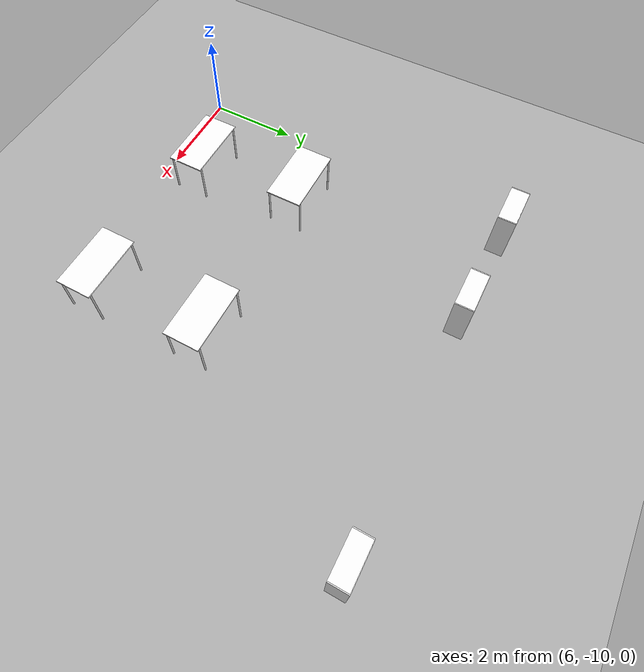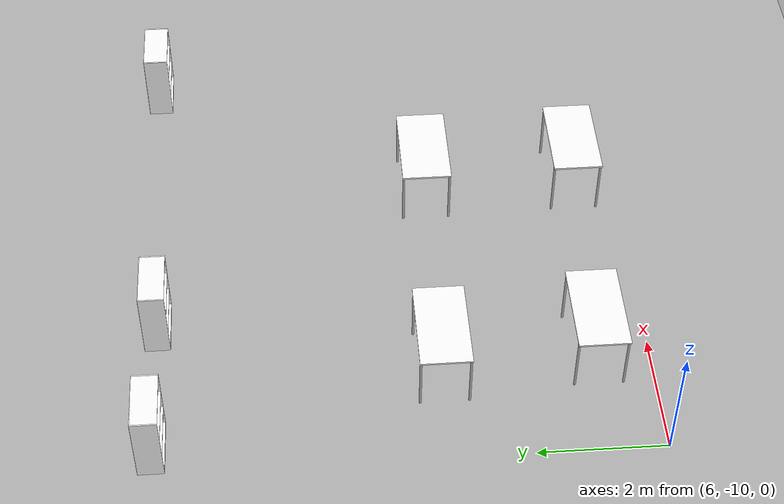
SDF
<sdf version="1.7">
 <world name="cp_world">
  <model name="ground_plane">
   <static>1</static>
   <link name="link">
    <collision name="collision">
     <geometry><plane><normal>0 0 1</normal><size>100 100</size></plane></geometry>
     <surface>
      <contact><collide_bitmask>65535</collide_bitmask></contact>
      <friction><ode><mu>100</mu><mu2>50</mu2></ode></friction>
     </surface>
    </collision>
    <visual name="visual">
     <cast_shadows>0</cast_shadows>
     <geometry><plane><normal>0 0 1</normal><size>100 100</size></plane></geometry>
     <material>
      <ambient>0.7 0.7 0.7 1.0</ambient>
      <diffuse>0.7 0.7 0.7 1.0</diffuse>
      <specular>0.01 0.01 0.01 1.0</specular>
     </material>
    </visual>
   </link>
  </model>
  <model name="bookshelf">
   <static>1</static>
   <link name="link">
    <inertial><mass>1</mass></inertial>
    <collision name="back">
     <pose>0 0.005 0.6 0 -0 0</pose>
     <geometry><box><size>0.9 0.01 1.2</size></box></geometry>
    </collision>
    <visual name="visual1">
     <pose>0 0.005 0.6 0 -0 0</pose>
     <geometry><box><size>0.9 0.01 1.2</size></box></geometry>
     <material>
      <diffuse>1.0 1.0 1.0</diffuse>
      <specular>1.0 1.0 1.0</specular>
      <ambient>1.0 1.0 1.0</ambient>
      <pbr><metal><albedo_map>model://wall/materials/textures/wood.jpg</albedo_map></metal></pbr>
     </material>
    </visual>
    <collision name="left_side">
     <pose>0.45 -0.195 0.6 0 -0 0</pose>
     <geometry><box><size>0.02 0.4 1.2</size></box></geometry>
    </collision>
    <visual name="visual2">
     <pose>0.45 -0.195 0.6 0 -0 0</pose>
     <geometry><box><size>0.02 0.4 1.2</size></box></geometry>
     <material>
      <diffuse>1.0 1.0 1.0</diffuse>
      <specular>1.0 1.0 1.0</specular>
      <ambient>1.0 1.0 1.0</ambient>
      <pbr><metal><albedo_map>model://wall/materials/textures/wood.jpg</albedo_map></metal></pbr>
     </material>
    </visual>
    <collision name="right_side">
     <pose>-0.45 -0.195 0.6 0 -0 0</pose>
     <geometry><box><size>0.02 0.4 1.2</size></box></geometry>
    </collision>
    <visual name="visual3">
     <pose>-0.45 -0.195 0.6 0 -0 0</pose>
     <geometry><box><size>0.02 0.4 1.2</size></box></geometry>
     <material>
      <diffuse>1.0 1.0 1.0</diffuse>
      <specular>1.0 1.0 1.0</specular>
      <ambient>1.0 1.0 1.0</ambient>
      <pbr><metal><albedo_map>model://wall/materials/textures/wood.jpg</albedo_map></metal></pbr>
     </material>
    </visual>
    <collision name="bottom">
     <pose>0 -0.195 0.03 0 -0 0</pose>
     <geometry><box><size>0.88 0.4 0.06</size></box></geometry>
    </collision>
    <visual name="visual4">
     <pose>0 -0.195 0.03 0 -0 0</pose>
     <geometry><box><size>0.88 0.4 0.06</size></box></geometry>
     <material>
      <diffuse>1.0 1.0 1.0</diffuse>
      <specular>1.0 1.0 1.0</specular>
      <ambient>1.0 1.0 1.0</ambient>
      <pbr><metal><albedo_map>model://wall/materials/textures/wood.jpg</albedo_map></metal></pbr>
     </material>
    </visual>
    <collision name="top">
     <pose>0 -0.195 1.19 0 -0 0</pose>
     <geometry><box><size>0.88 0.4 0.02</size></box></geometry>
    </collision>
    <visual name="visual5">
     <pose>0 -0.195 1.19 0 -0 0</pose>
     <geometry><box><size>0.88 0.4 0.02</size></box></geometry>
     <material>
      <diffuse>1.0 1.0 1.0</diffuse>
      <specular>1.0 1.0 1.0</specular>
      <ambient>1.0 1.0 1.0</ambient>
      <pbr><metal><albedo_map>model://wall/materials/textures/wood.jpg</albedo_map></metal></pbr>
     </material>
    </visual>
    <collision name="low_shelf">
     <pose>0 -0.195 0.43 0 -0 0</pose>
     <geometry><box><size>0.88 0.4 0.02</size></box></geometry>
    </collision>
    <visual name="visual6">
     <pose>0 -0.195 0.43 0 -0 0</pose>
     <geometry><box><size>0.88 0.4 0.02</size></box></geometry>
     <material>
      <diffuse>1.0 1.0 1.0</diffuse>
      <specular>1.0 1.0 1.0</specular>
      <ambient>1.0 1.0 1.0</ambient>
      <pbr><metal><albedo_map>model://wall/materials/textures/wood.jpg</albedo_map></metal></pbr>
     </material>
    </visual>
    <collision name="high_shelf">
     <pose>0 -0.195 0.8 0 -0 0</pose>
     <geometry><box><size>0.88 0.4 0.02</size></box></geometry>
    </collision>
    <visual name="visual7">
     <pose>0 -0.195 0.8 0 -0 0</pose>
     <geometry><box><size>0.88 0.4 0.02</size></box></geometry>
     <material>
      <diffuse>1.0 1.0 1.0</diffuse>
      <specular>1.0 1.0 1.0</specular>
      <ambient>1.0 1.0 1.0</ambient>
      <pbr><metal><albedo_map>model://wall/materials/textures/wood.jpg</albedo_map></metal></pbr>
     </material>
    </visual>
   </link>
   <pose>6.47527 -2.08291 0 0 -0 0</pose>
  </model>
  <model name="bookshelf_clone">
   <static>1</static>
   <link name="link">
    <inertial><mass>1</mass></inertial>
    <collision name="back">
     <pose>0 0.005 0.6 0 -0 0</pose>
     <geometry><box><size>0.9 0.01 1.2</size></box></geometry>
    </collision>
    <visual name="visual1">
     <pose>0 0.005 0.6 0 -0 0</pose>
     <geometry><box><size>0.9 0.01 1.2</size></box></geometry>
     <material>
      <diffuse>1.0 1.0 1.0</diffuse>
      <specular>1.0 1.0 1.0</specular>
      <ambient>1.0 1.0 1.0</ambient>
      <pbr><metal><albedo_map>model://wall/materials/textures/wood.jpg</albedo_map></metal></pbr>
     </material>
    </visual>
    <collision name="left_side">
     <pose>0.45 -0.195 0.6 0 -0 0</pose>
     <geometry><box><size>0.02 0.4 1.2</size></box></geometry>
    </collision>
    <visual name="visual2">
     <pose>0.45 -0.195 0.6 0 -0 0</pose>
     <geometry><box><size>0.02 0.4 1.2</size></box></geometry>
     <material>
      <diffuse>1.0 1.0 1.0</diffuse>
      <specular>1.0 1.0 1.0</specular>
      <ambient>1.0 1.0 1.0</ambient>
      <pbr><metal><albedo_map>model://wall/materials/textures/wood.jpg</albedo_map></metal></pbr>
     </material>
    </visual>
    <collision name="right_side">
     <pose>-0.45 -0.195 0.6 0 -0 0</pose>
     <geometry><box><size>0.02 0.4 1.2</size></box></geometry>
    </collision>
    <visual name="visual3">
     <pose>-0.45 -0.195 0.6 0 -0 0</pose>
     <geometry><box><size>0.02 0.4 1.2</size></box></geometry>
     <material>
      <diffuse>1.0 1.0 1.0</diffuse>
      <specular>1.0 1.0 1.0</specular>
      <ambient>1.0 1.0 1.0</ambient>
      <pbr><metal><albedo_map>model://wall/materials/textures/wood.jpg</albedo_map></metal></pbr>
     </material>
    </visual>
    <collision name="bottom">
     <pose>0 -0.195 0.03 0 -0 0</pose>
     <geometry><box><size>0.88 0.4 0.06</size></box></geometry>
    </collision>
    <visual name="visual4">
     <pose>0 -0.195 0.03 0 -0 0</pose>
     <geometry><box><size>0.88 0.4 0.06</size></box></geometry>
     <material>
      <diffuse>1.0 1.0 1.0</diffuse>
      <specular>1.0 1.0 1.0</specular>
      <ambient>1.0 1.0 1.0</ambient>
      <pbr><metal><albedo_map>model://wall/materials/textures/wood.jpg</albedo_map></metal></pbr>
     </material>
    </visual>
    <collision name="top">
     <pose>0 -0.195 1.19 0 -0 0</pose>
     <geometry><box><size>0.88 0.4 0.02</size></box></geometry>
    </collision>
    <visual name="visual5">
     <pose>0 -0.195 1.19 0 -0 0</pose>
     <geometry><box><size>0.88 0.4 0.02</size></box></geometry>
     <material>
      <diffuse>1.0 1.0 1.0</diffuse>
      <specular>1.0 1.0 1.0</specular>
      <ambient>1.0 1.0 1.0</ambient>
      <pbr><metal><albedo_map>model://wall/materials/textures/wood.jpg</albedo_map></metal></pbr>
     </material>
    </visual>
    <collision name="low_shelf">
     <pose>0 -0.195 0.43 0 -0 0</pose>
     <geometry><box><size>0.88 0.4 0.02</size></box></geometry>
    </collision>
    <visual name="visual6">
     <pose>0 -0.195 0.43 0 -0 0</pose>
     <geometry><box><size>0.88 0.4 0.02</size></box></geometry>
     <material>
      <diffuse>1.0 1.0 1.0</diffuse>
      <specular>1.0 1.0 1.0</specular>
      <ambient>1.0 1.0 1.0</ambient>
      <pbr><metal><albedo_map>model://wall/materials/textures/wood.jpg</albedo_map></metal></pbr>
     </material>
    </visual>
    <collision name="high_shelf">
     <pose>0 -0.195 0.8 0 -0 0</pose>
     <geometry><box><size>0.88 0.4 0.02</size></box></geometry>
    </collision>
    <visual name="visual7">
     <pose>0 -0.195 0.8 0 -0 0</pose>
     <geometry><box><size>0.88 0.4 0.02</size></box></geometry>
     <material>
      <diffuse>1.0 1.0 1.0</diffuse>
      <specular>1.0 1.0 1.0</specular>
      <ambient>1.0 1.0 1.0</ambient>
      <pbr><metal><albedo_map>model://wall/materials/textures/wood.jpg</albedo_map></metal></pbr>
     </material>
    </visual>
   </link>
   <pose>8.81766 -2.1308 0 0 -0 0</pose>
  </model>
  <model name="bookshelf_clone_clone">
   <static>1</static>
   <link name="link">
    <inertial><mass>1</mass></inertial>
    <collision name="back">
     <pose>0 0.005 0.6 0 -0 0</pose>
     <geometry><box><size>0.9 0.01 1.2</size></box></geometry>
    </collision>
    <visual name="visual1">
     <pose>0 0.005 0.6 0 -0 0</pose>
     <geometry><box><size>0.9 0.01 1.2</size></box></geometry>
     <material>
      <diffuse>1.0 1.0 1.0</diffuse>
      <specular>1.0 1.0 1.0</specular>
      <ambient>1.0 1.0 1.0</ambient>
      <pbr><metal><albedo_map>model://wall/materials/textures/wood.jpg</albedo_map></metal></pbr>
     </material>
    </visual>
    <collision name="left_side">
     <pose>0.45 -0.195 0.6 0 -0 0</pose>
     <geometry><box><size>0.02 0.4 1.2</size></box></geometry>
    </collision>
    <visual name="visual2">
     <pose>0.45 -0.195 0.6 0 -0 0</pose>
     <geometry><box><size>0.02 0.4 1.2</size></box></geometry>
     <material>
      <diffuse>1.0 1.0 1.0</diffuse>
      <specular>1.0 1.0 1.0</specular>
      <ambient>1.0 1.0 1.0</ambient>
      <pbr><metal><albedo_map>model://wall/materials/textures/wood.jpg</albedo_map></metal></pbr>
     </material>
    </visual>
    <collision name="right_side">
     <pose>-0.45 -0.195 0.6 0 -0 0</pose>
     <geometry><box><size>0.02 0.4 1.2</size></box></geometry>
    </collision>
    <visual name="visual3">
     <pose>-0.45 -0.195 0.6 0 -0 0</pose>
     <geometry><box><size>0.02 0.4 1.2</size></box></geometry>
     <material>
      <diffuse>1.0 1.0 1.0</diffuse>
      <specular>1.0 1.0 1.0</specular>
      <ambient>1.0 1.0 1.0</ambient>
      <pbr><metal><albedo_map>model://wall/materials/textures/wood.jpg</albedo_map></metal></pbr>
     </material>
    </visual>
    <collision name="bottom">
     <pose>0 -0.195 0.03 0 -0 0</pose>
     <geometry><box><size>0.88 0.4 0.06</size></box></geometry>
    </collision>
    <visual name="visual4">
     <pose>0 -0.195 0.03 0 -0 0</pose>
     <geometry><box><size>0.88 0.4 0.06</size></box></geometry>
     <material>
      <diffuse>1.0 1.0 1.0</diffuse>
      <specular>1.0 1.0 1.0</specular>
      <ambient>1.0 1.0 1.0</ambient>
      <pbr><metal><albedo_map>model://wall/materials/textures/wood.jpg</albedo_map></metal></pbr>
     </material>
    </visual>
    <collision name="top">
     <pose>0 -0.195 1.19 0 -0 0</pose>
     <geometry><box><size>0.88 0.4 0.02</size></box></geometry>
    </collision>
    <visual name="visual5">
     <pose>0 -0.195 1.19 0 -0 0</pose>
     <geometry><box><size>0.88 0.4 0.02</size></box></geometry>
     <material>
      <diffuse>1.0 1.0 1.0</diffuse>
      <specular>1.0 1.0 1.0</specular>
      <ambient>1.0 1.0 1.0</ambient>
      <pbr><metal><albedo_map>model://wall/materials/textures/wood.jpg</albedo_map></metal></pbr>
     </material>
    </visual>
    <collision name="low_shelf">
     <pose>0 -0.195 0.43 0 -0 0</pose>
     <geometry><box><size>0.88 0.4 0.02</size></box></geometry>
    </collision>
    <visual name="visual6">
     <pose>0 -0.195 0.43 0 -0 0</pose>
     <geometry><box><size>0.88 0.4 0.02</size></box></geometry>
     <material>
      <diffuse>1.0 1.0 1.0</diffuse>
      <specular>1.0 1.0 1.0</specular>
      <ambient>1.0 1.0 1.0</ambient>
      <pbr><metal><albedo_map>model://wall/materials/textures/wood.jpg</albedo_map></metal></pbr>
     </material>
    </visual>
    <collision name="high_shelf">
     <pose>0 -0.195 0.8 0 -0 0</pose>
     <geometry><box><size>0.88 0.4 0.02</size></box></geometry>
    </collision>
    <visual name="visual7">
     <pose>0 -0.195 0.8 0 -0 0</pose>
     <geometry><box><size>0.88 0.4 0.02</size></box></geometry>
     <material>
      <diffuse>1.0 1.0 1.0</diffuse>
      <specular>1.0 1.0 1.0</specular>
      <ambient>1.0 1.0 1.0</ambient>
      <pbr><metal><albedo_map>model://wall/materials/textures/wood.jpg</albedo_map></metal></pbr>
     </material>
    </visual>
   </link>
   <pose>14.286 -2.07708 0 0 -0 0</pose>
  </model>
  <model name="table">
   <static>1</static>
   <link name="link">
    <collision name="surface">
     <pose>0 0 1 0 -0 0</pose>
     <geometry><box><size>1.5 0.8 0.03</size></box></geometry>
     <surface><friction><ode><mu>0.6</mu><mu2>0.6</mu2></ode></friction></surface>
    </collision>
    <visual name="visual1">
     <pose>0 0 1 0 -0 0</pose>
     <geometry><box><size>1.5 0.8 0.03</size></box></geometry>
     <material>
      <diffuse>1.0 1.0 1.0</diffuse>
      <specular>1.0 1.0 1.0</specular>
      <ambient>1.0 1.0 1.0</ambient>
      <pbr><metal><albedo_map>model://wall/materials/textures/wood.jpg</albedo_map></metal></pbr>
     </material>
    </visual>
    <collision name="front_left_leg">
     <pose>0.68 0.38 0.5 0 -0 0</pose>
     <geometry><cylinder><radius>0.02</radius><length>1</length></cylinder></geometry>
    </collision>
    <visual name="front_left_leg">
     <pose>0.68 0.38 0.5 0 -0 0</pose>
     <geometry><cylinder><radius>0.02</radius><length>1</length></cylinder></geometry>
     <material>
      <ambient>0.7 0.7 0.7 1.0</ambient>
      <diffuse>0.7 0.7 0.7 1.0</diffuse>
      <specular>0.01 0.01 0.01 1.0</specular>
     </material>
    </visual>
    <collision name="front_right_leg">
     <pose>0.68 -0.38 0.5 0 -0 0</pose>
     <geometry><cylinder><radius>0.02</radius><length>1</length></cylinder></geometry>
    </collision>
    <visual name="front_right_leg">
     <pose>0.68 -0.38 0.5 0 -0 0</pose>
     <geometry><cylinder><radius>0.02</radius><length>1</length></cylinder></geometry>
     <material>
      <ambient>0.7 0.7 0.7 1.0</ambient>
      <diffuse>0.7 0.7 0.7 1.0</diffuse>
      <specular>0.01 0.01 0.01 1.0</specular>
     </material>
    </visual>
    <collision name="back_right_leg">
     <pose>-0.68 -0.38 0.5 0 -0 0</pose>
     <geometry><cylinder><radius>0.02</radius><length>1</length></cylinder></geometry>
    </collision>
    <visual name="back_right_leg">
     <pose>-0.68 -0.38 0.5 0 -0 0</pose>
     <geometry><cylinder><radius>0.02</radius><length>1</length></cylinder></geometry>
     <material>
      <ambient>0.7 0.7 0.7 1.0</ambient>
      <diffuse>0.7 0.7 0.7 1.0</diffuse>
      <specular>0.01 0.01 0.01 1.0</specular>
     </material>
    </visual>
    <collision name="back_left_leg">
     <pose>-0.68 0.38 0.5 0 -0 0</pose>
     <geometry><cylinder><radius>0.02</radius><length>1</length></cylinder></geometry>
    </collision>
    <visual name="back_left_leg">
     <pose>-0.68 0.38 0.5 0 -0 0</pose>
     <geometry><cylinder><radius>0.02</radius><length>1</length></cylinder></geometry>
     <material>
      <ambient>0.7 0.7 0.7 1.0</ambient>
      <diffuse>0.7 0.7 0.7 1.0</diffuse>
      <specular>0.01 0.01 0.01 1.0</specular>
     </material>
    </visual>
   </link>
   <pose>7.7474 -6.72268 0 0 -0 0</pose>
  </model>
  <model name="table_clone">
   <static>1</static>
   <link name="link">
    <collision name="surface">
     <pose>0 0 1 0 -0 0</pose>
     <geometry><box><size>1.5 0.8 0.03</size></box></geometry>
     <surface><friction><ode><mu>0.6</mu><mu2>0.6</mu2></ode></friction></surface>
    </collision>
    <visual name="visual1">
     <pose>0 0 1 0 -0 0</pose>
     <geometry><box><size>1.5 0.8 0.03</size></box></geometry>
     <material>
      <diffuse>1.0 1.0 1.0</diffuse>
      <specular>1.0 1.0 1.0</specular>
      <ambient>1.0 1.0 1.0</ambient>
      <pbr><metal><albedo_map>model://wall/materials/textures/wood.jpg</albedo_map></metal></pbr>
     </material>
    </visual>
    <collision name="front_left_leg">
     <pose>0.68 0.38 0.5 0 -0 0</pose>
     <geometry><cylinder><radius>0.02</radius><length>1</length></cylinder></geometry>
    </collision>
    <visual name="front_left_leg">
     <pose>0.68 0.38 0.5 0 -0 0</pose>
     <geometry><cylinder><radius>0.02</radius><length>1</length></cylinder></geometry>
     <material>
      <ambient>0.7 0.7 0.7 1.0</ambient>
      <diffuse>0.7 0.7 0.7 1.0</diffuse>
      <specular>0.01 0.01 0.01 1.0</specular>
     </material>
    </visual>
    <collision name="front_right_leg">
     <pose>0.68 -0.38 0.5 0 -0 0</pose>
     <geometry><cylinder><radius>0.02</radius><length>1</length></cylinder></geometry>
    </collision>
    <visual name="front_right_leg">
     <pose>0.68 -0.38 0.5 0 -0 0</pose>
     <geometry><cylinder><radius>0.02</radius><length>1</length></cylinder></geometry>
     <material>
      <ambient>0.7 0.7 0.7 1.0</ambient>
      <diffuse>0.7 0.7 0.7 1.0</diffuse>
      <specular>0.01 0.01 0.01 1.0</specular>
     </material>
    </visual>
    <collision name="back_right_leg">
     <pose>-0.68 -0.38 0.5 0 -0 0</pose>
     <geometry><cylinder><radius>0.02</radius><length>1</length></cylinder></geometry>
    </collision>
    <visual name="back_right_leg">
     <pose>-0.68 -0.38 0.5 0 -0 0</pose>
     <geometry><cylinder><radius>0.02</radius><length>1</length></cylinder></geometry>
     <material>
      <ambient>0.7 0.7 0.7 1.0</ambient>
      <diffuse>0.7 0.7 0.7 1.0</diffuse>
      <specular>0.01 0.01 0.01 1.0</specular>
     </material>
    </visual>
    <collision name="back_left_leg">
     <pose>-0.68 0.38 0.5 0 -0 0</pose>
     <geometry><cylinder><radius>0.02</radius><length>1</length></cylinder></geometry>
    </collision>
    <visual name="back_left_leg">
     <pose>-0.68 0.38 0.5 0 -0 0</pose>
     <geometry><cylinder><radius>0.02</radius><length>1</length></cylinder></geometry>
     <material>
      <ambient>0.7 0.7 0.7 1.0</ambient>
      <diffuse>0.7 0.7 0.7 1.0</diffuse>
      <specular>0.01 0.01 0.01 1.0</specular>
     </material>
    </visual>
   </link>
   <pose>7.93352 -9.12474 0 0 -0 0</pose>
  </model>
  <model name="table_clone_0">
   <static>1</static>
   <link name="link">
    <collision name="surface">
     <pose>0 0 1 0 -0 0</pose>
     <geometry><box><size>1.5 0.8 0.03</size></box></geometry>
     <surface><friction><ode><mu>0.6</mu><mu2>0.6</mu2></ode></friction></surface>
    </collision>
    <visual name="visual1">
     <pose>0 0 1 0 -0 0</pose>
     <geometry><box><size>1.5 0.8 0.03</size></box></geometry>
     <material>
      <diffuse>1.0 1.0 1.0</diffuse>
      <specular>1.0 1.0 1.0</specular>
      <ambient>1.0 1.0 1.0</ambient>
      <pbr><metal><albedo_map>model://wall/materials/textures/wood.jpg</albedo_map></metal></pbr>
     </material>
    </visual>
    <collision name="front_left_leg">
     <pose>0.68 0.38 0.5 0 -0 0</pose>
     <geometry><cylinder><radius>0.02</radius><length>1</length></cylinder></geometry>
    </collision>
    <visual name="front_left_leg">
     <pose>0.68 0.38 0.5 0 -0 0</pose>
     <geometry><cylinder><radius>0.02</radius><length>1</length></cylinder></geometry>
     <material>
      <ambient>0.7 0.7 0.7 1.0</ambient>
      <diffuse>0.7 0.7 0.7 1.0</diffuse>
      <specular>0.01 0.01 0.01 1.0</specular>
     </material>
    </visual>
    <collision name="front_right_leg">
     <pose>0.68 -0.38 0.5 0 -0 0</pose>
     <geometry><cylinder><radius>0.02</radius><length>1</length></cylinder></geometry>
    </collision>
    <visual name="front_right_leg">
     <pose>0.68 -0.38 0.5 0 -0 0</pose>
     <geometry><cylinder><radius>0.02</radius><length>1</length></cylinder></geometry>
     <material>
      <ambient>0.7 0.7 0.7 1.0</ambient>
      <diffuse>0.7 0.7 0.7 1.0</diffuse>
      <specular>0.01 0.01 0.01 1.0</specular>
     </material>
    </visual>
    <collision name="back_right_leg">
     <pose>-0.68 -0.38 0.5 0 -0 0</pose>
     <geometry><cylinder><radius>0.02</radius><length>1</length></cylinder></geometry>
    </collision>
    <visual name="back_right_leg">
     <pose>-0.68 -0.38 0.5 0 -0 0</pose>
     <geometry><cylinder><radius>0.02</radius><length>1</length></cylinder></geometry>
     <material>
      <ambient>0.7 0.7 0.7 1.0</ambient>
      <diffuse>0.7 0.7 0.7 1.0</diffuse>
      <specular>0.01 0.01 0.01 1.0</specular>
     </material>
    </visual>
    <collision name="back_left_leg">
     <pose>-0.68 0.38 0.5 0 -0 0</pose>
     <geometry><cylinder><radius>0.02</radius><length>1</length></cylinder></geometry>
    </collision>
    <visual name="back_left_leg">
     <pose>-0.68 0.38 0.5 0 -0 0</pose>
     <geometry><cylinder><radius>0.02</radius><length>1</length></cylinder></geometry>
     <material>
      <ambient>0.7 0.7 0.7 1.0</ambient>
      <diffuse>0.7 0.7 0.7 1.0</diffuse>
      <specular>0.01 0.01 0.01 1.0</specular>
     </material>
    </visual>
   </link>
   <pose>11.6393 -6.76374 0 0 -0 0</pose>
  </model>
  <model name="table_clone_0_clone">
   <static>1</static>
   <link name="link">
    <collision name="surface">
     <pose>0 0 1 0 -0 0</pose>
     <geometry><box><size>1.5 0.8 0.03</size></box></geometry>
     <surface><friction><ode><mu>0.6</mu><mu2>0.6</mu2></ode></friction></surface>
    </collision>
    <visual name="visual1">
     <pose>0 0 1 0 -0 0</pose>
     <geometry><box><size>1.5 0.8 0.03</size></box></geometry>
     <material>
      <diffuse>1.0 1.0 1.0</diffuse>
      <specular>1.0 1.0 1.0</specular>
      <ambient>1.0 1.0 1.0</ambient>
      <pbr><metal><albedo_map>model://wall/materials/textures/wood.jpg</albedo_map></metal></pbr>
     </material>
    </visual>
    <collision name="front_left_leg">
     <pose>0.68 0.38 0.5 0 -0 0</pose>
     <geometry><cylinder><radius>0.02</radius><length>1</length></cylinder></geometry>
    </collision>
    <visual name="front_left_leg">
     <pose>0.68 0.38 0.5 0 -0 0</pose>
     <geometry><cylinder><radius>0.02</radius><length>1</length></cylinder></geometry>
     <material>
      <ambient>0.7 0.7 0.7 1.0</ambient>
      <diffuse>0.7 0.7 0.7 1.0</diffuse>
      <specular>0.01 0.01 0.01 1.0</specular>
     </material>
    </visual>
    <collision name="front_right_leg">
     <pose>0.68 -0.38 0.5 0 -0 0</pose>
     <geometry><cylinder><radius>0.02</radius><length>1</length></cylinder></geometry>
    </collision>
    <visual name="front_right_leg">
     <pose>0.68 -0.38 0.5 0 -0 0</pose>
     <geometry><cylinder><radius>0.02</radius><length>1</length></cylinder></geometry>
     <material>
      <ambient>0.7 0.7 0.7 1.0</ambient>
      <diffuse>0.7 0.7 0.7 1.0</diffuse>
      <specular>0.01 0.01 0.01 1.0</specular>
     </material>
    </visual>
    <collision name="back_right_leg">
     <pose>-0.68 -0.38 0.5 0 -0 0</pose>
     <geometry><cylinder><radius>0.02</radius><length>1</length></cylinder></geometry>
    </collision>
    <visual name="back_right_leg">
     <pose>-0.68 -0.38 0.5 0 -0 0</pose>
     <geometry><cylinder><radius>0.02</radius><length>1</length></cylinder></geometry>
     <material>
      <ambient>0.7 0.7 0.7 1.0</ambient>
      <diffuse>0.7 0.7 0.7 1.0</diffuse>
      <specular>0.01 0.01 0.01 1.0</specular>
     </material>
    </visual>
    <collision name="back_left_leg">
     <pose>-0.68 0.38 0.5 0 -0 0</pose>
     <geometry><cylinder><radius>0.02</radius><length>1</length></cylinder></geometry>
    </collision>
    <visual name="back_left_leg">
     <pose>-0.68 0.38 0.5 0 -0 0</pose>
     <geometry><cylinder><radius>0.02</radius><length>1</length></cylinder></geometry>
     <material>
      <ambient>0.7 0.7 0.7 1.0</ambient>
      <diffuse>0.7 0.7 0.7 1.0</diffuse>
      <specular>0.01 0.01 0.01 1.0</specular>
     </material>
    </visual>
   </link>
   <pose>11.6926 -9.2738 0 0 -0 0</pose>
  </model>
 </world>
</sdf>
